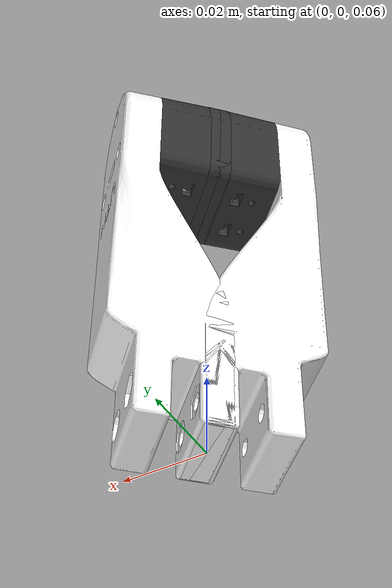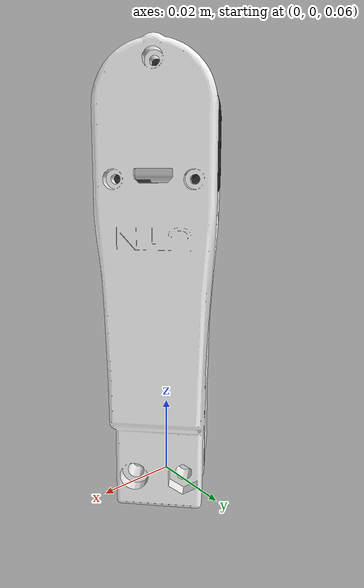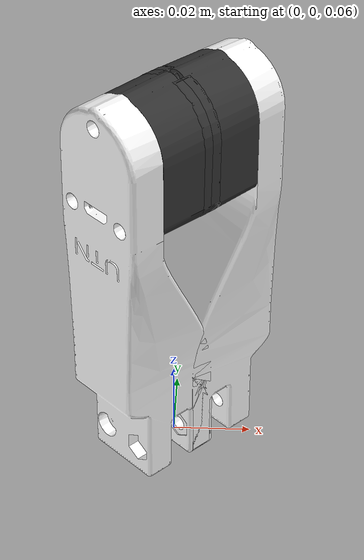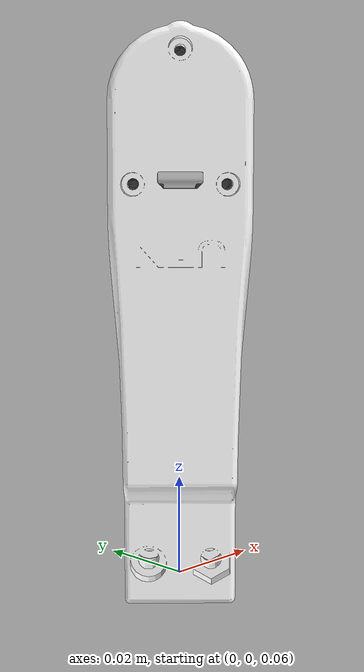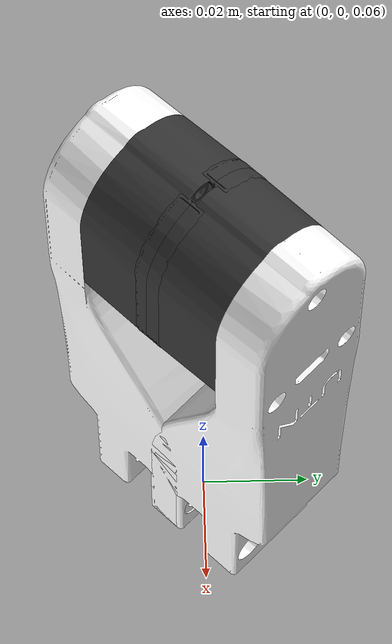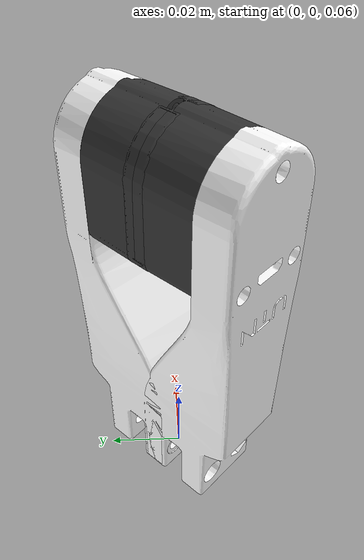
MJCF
<mujoco model="digit">
    <extension>
        <plugin plugin="mujoco.sensor.touch_grid"/>
    </extension>
    <compiler angle="radian" meshdir="assets"/>

    <asset>
        <mesh name="digit_finger" file="digit_finger.obj"/>
        <mesh name="digit_finger_attachment_collision" file="digit_finger_attachment_collision.stl"/>
        <mesh name="digit_finger_backplate_collision" file="digit_finger_backplate_collision.stl"/>
        <mesh name="digit_sensor_no_backplate" file="digit_sensor_no_backplate.obj"/>
        <mesh name="digit_sensor_no_backplate_collision" file="digit_sensor_no_backplate_collision.stl"/>
        <mesh name="digit_sensor_pad" file="digit_sensor_pad.obj"/>

        <material name="white" rgba="1 1 1 1"/>
        <material name="black" rgba="0.2 0.2 0.2 1"/>
        <material name="grey_material" rgba="0.776 0.776 0.776 1"/>
    </asset>

    <default>
        <default class="digit">
            <joint armature="0.1" damping="1"/>
            <default class="finger">
                <joint axis="0 1 0" type="slide" range="0 0.04" limited="true"/>
            </default>
            <default class="visual">
                <geom type="mesh" group="2" contype="0" conaffinity="0"/>
            </default>
            <default class="collision">
                <geom type="mesh" group="3" mass="0" density="0"/>
                <default class="fingertip_pad_collision_1">
                    <geom type="box" size="0.0085 0.004 0.0085" pos="0 0.0055 0.0445"/>
                </default>
                <default class="fingertip_pad_collision_2">
                    <geom type="box" size="0.003 0.002 0.003" pos="0.0055 0.002 0.05"/>
                </default>
                <default class="fingertip_pad_collision_3">
                    <geom type="box" size="0.003 0.002 0.003" pos="-0.0055 0.002 0.05"/>
                </default>
                <default class="fingertip_pad_collision_4">
                    <geom type="box" size="0.003 0.002 0.0035" pos="0.0055 0.002 0.0395"/>
                </default>
            </default>
        </default>
    </default>

    <worldbody>
        <body name="digit" childclass="digit" quat="0.9238795 0 0 -0.3826834" gravcomp="1">
            <body name="left_finger" pos="0 0.01 0.075" euler="0 3.141592653589793 3.141592653589793" gravcomp="1">
                <geom mesh="digit_finger" class="visual" material="white"/>
                <geom mesh="digit_finger_attachment_collision" class="collision" name="finger_a_left"/>
                <geom mesh="digit_finger_backplate_collision" class="collision" name="finger_b_left"/>
                <geom mesh="digit_sensor_no_backplate" class="visual" material="black"/>
                <geom mesh="digit_sensor_no_backplate_collision" class="collision" name="finger_c_left"/>
                <body name="left_taxim">
                    <geom mesh="digit_sensor_pad" class="visual" material="grey_material"/>
                    <geom mesh="digit_sensor_pad" class="collision" name="finger_1_left" friction="0.4"/>
                    <geom class="fingertip_pad_collision_1" name="fingertip_pad_collision_1_left_0" friction="2 0.05 0.0001"/>
                    <geom class="fingertip_pad_collision_2" name="fingertip_pad_collision_1_left_1" friction="2 0.05 0.0001"/>
                    <geom class="fingertip_pad_collision_3" name="fingertip_pad_collision_1_left_2" friction="2 0.05 0.0001"/>
                    <geom class="fingertip_pad_collision_4" name="fingertip_pad_collision_1_left_3" friction="2 0.05 0.0001"/>
                    <site name="left_taxim_pad" pos="0 0.0173 -0.075" euler="-1.570796 0 1.570796"/>
                </body>
                <joint name="finger_joint1" class="finger"/>
                <inertial mass="0.015" pos="0 0 0" diaginertia="2.375e-6 2.375e-6 7.5e-7"/>
            </body>
            <body name="right_finger" pos="0 -0.01 0.075" euler="0 3.141592653589793 0" gravcomp="1">
                <geom mesh="digit_finger" class="visual" material="white"/>
                <geom mesh="digit_finger_attachment_collision" class="collision" name="finger_a_right"/>
                <geom mesh="digit_finger_backplate_collision" class="collision" name="finger_b_right"/>
                <geom mesh="digit_sensor_no_backplate" class="visual" material="black"/>
                <geom mesh="digit_sensor_no_backplate_collision" class="collision" name="finger_c_right"/>
                <body name="right_taxim">
                    <geom mesh="digit_sensor_pad" class="visual" material="grey_material"/>
                    <geom mesh="digit_sensor_pad" class="collision" name="finger_1_right" friction="0.4"/>
                    <geom class="fingertip_pad_collision_1" name="fingertip_pad_collision_1_right_0" friction="2 0.05 0.0001"/>
                    <geom class="fingertip_pad_collision_2" name="fingertip_pad_collision_1_right_1" friction="2 0.05 0.0001"/>
                    <geom class="fingertip_pad_collision_3" name="fingertip_pad_collision_1_right_2" friction="2 0.05 0.0001"/>
                    <geom class="fingertip_pad_collision_4" name="fingertip_pad_collision_1_right_3" friction="2 0.05 0.0001"/>
                    <site name="right_taxim_pad" pos="0 0.0173 -0.075" euler="-1.570796 0 1.570796"/>
                </body>
                <joint name="finger_joint2" class="finger"/>
                <inertial mass="0.015" pos="0 0 0" diaginertia="2.375e-6 2.375e-6 7.5e-7"/>
            </body>
        </body>
    </worldbody>

    <tendon>
        <fixed name="split">
            <joint joint="finger_joint1" coef="0.5"/>
            <joint joint="finger_joint2" coef="0.5"/>
        </fixed>
    </tendon>

    <equality>
        <joint joint1="finger_joint1" joint2="finger_joint2" solimp="0.95 0.99 0.001" solref="0.005 1"/>
    </equality>

    <actuator>
        <general
            name="hand_actuator"
            class="digit"
            tendon="split"
            forcerange="-100 100"
            ctrlrange="0 255"
            biastype="affine"
            gainprm="0.01568627451 0 0"
            biasprm="0 -100 -10"/>
    </actuator>
</mujoco>
